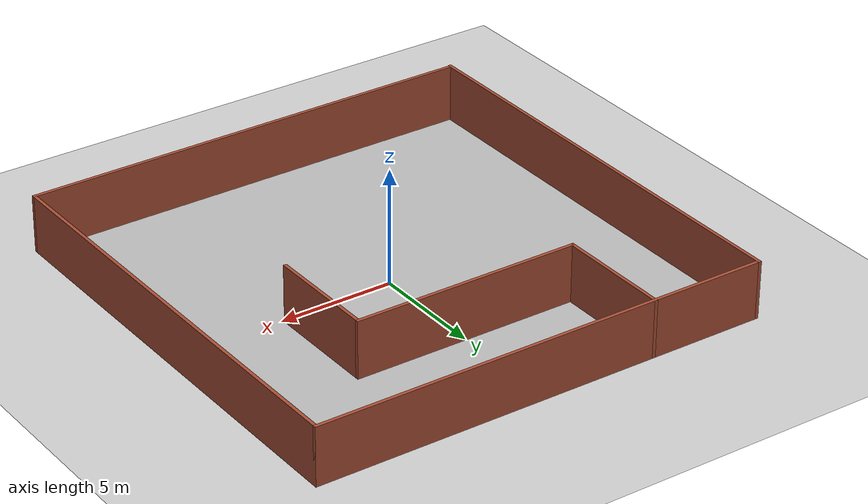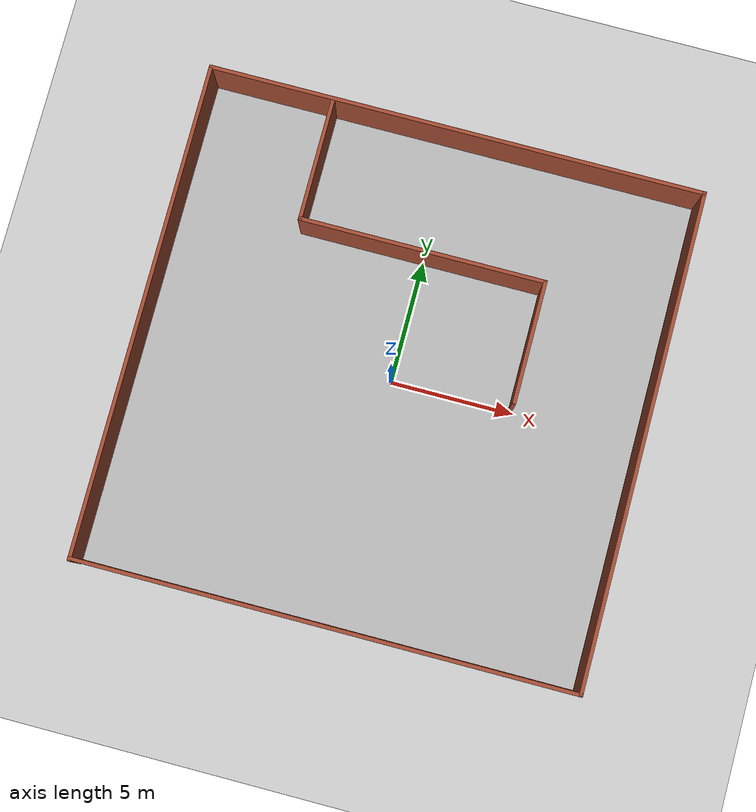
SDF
<sdf version="1.6">
 <world name="default">
  <light name="sun" type="directional">
   <pose>0 0 10 0 -0 0</pose>
   <diffuse>1 1 1 1</diffuse>
   <specular>1 1 1 1</specular>
   <attenuation>
    <range>1000</range>
    <constant>0.9</constant>
    <linear>0.01</linear>
    <quadratic>0.001</quadratic>
   </attenuation>
   <direction>-0.5 0.1 -0.9</direction>
  </light>
  <model name="ground_plane">
   <static>1</static>
   <link name="link">
    <collision name="collision">
     <geometry><plane><normal>0 0 1</normal><size>100 100</size></plane></geometry>
     <surface><friction><ode><mu>100</mu><mu2>50</mu2></ode></friction></surface>
    </collision>
    <visual name="visual">
     <cast_shadows>0</cast_shadows>
     <geometry><plane><normal>0 0 1</normal><size>100 100</size></plane></geometry>
     <material>
      <script><uri>file://media/materials/scripts/gazebo.material</uri><name>Gazebo/Grey</name></script>
     </material>
    </visual>
   </link>
  </model>
  <gravity>0 0 -9.8</gravity>
  <magnetic_field>6e-06 2.3e-05 -4.2e-05</magnetic_field>
  <atmosphere type="adiabatic"/>
  <physics name="default_physics" default="0" type="ode">
   <max_step_size>0.001</max_step_size>
   <real_time_factor>1</real_time_factor>
   <real_time_update_rate>1000</real_time_update_rate>
  </physics>
  <scene><ambient>0.4 0.4 0.4 1</ambient><background>0.7 0.7 0.7 1</background><shadows>1</shadows></scene>
  <spherical_coordinates>
   <surface_model>EARTH_WGS84</surface_model>
   <latitude_deg>0</latitude_deg>
   <longitude_deg>0</longitude_deg>
   <elevation>0</elevation>
   <heading_deg>0</heading_deg>
  </spherical_coordinates>
  <model name="Nuclear_Building1">
   <pose>0 0 0 0 0 -1.5708</pose>
   <link name="Wall_18">
    <collision name="Wall_18_Collision">
     <geometry><box><size>20.15 0.15 2.5</size></box></geometry>
     <pose>0 0 1.25 0 -0 0</pose>
    </collision>
    <visual name="Wall_18_Visual">
     <pose>0 0 1.25 0 -0 0</pose>
     <geometry><box><size>20.15 0.15 2.5</size></box></geometry>
     <material>
      <script><uri>file://media/materials/scripts/gazebo.material</uri><name>Gazebo/Bricks</name></script>
      <ambient>1 1 1 1</ambient>
     </material>
     <meta><layer>0</layer></meta>
    </visual>
    <pose>0 -10 0 0 -0 3.14159</pose>
   </link>
   <link name="Wall_20">
    <collision name="Wall_20_Collision">
     <geometry><box><size>20.15 0.15 2.5</size></box></geometry>
     <pose>0 0 1.25 0 -0 0</pose>
    </collision>
    <visual name="Wall_20_Visual">
     <pose>0 0 1.25 0 -0 0</pose>
     <geometry><box><size>20.15 0.15 2.5</size></box></geometry>
     <material>
      <script><uri>file://media/materials/scripts/gazebo.material</uri><name>Gazebo/Bricks</name></script>
      <ambient>1 1 1 1</ambient>
     </material>
     <meta><layer>0</layer></meta>
    </visual>
    <pose>-10 0 0 0 -0 1.5708</pose>
   </link>
   <link name="Wall_22">
    <collision name="Wall_22_Collision">
     <geometry><box><size>20.15 0.15 2.5</size></box></geometry>
     <pose>0 0 1.25 0 -0 0</pose>
    </collision>
    <visual name="Wall_22_Visual">
     <pose>0 0 1.25 0 -0 0</pose>
     <geometry><box><size>20.15 0.15 2.5</size></box></geometry>
     <material>
      <script><uri>file://media/materials/scripts/gazebo.material</uri><name>Gazebo/Bricks</name></script>
      <ambient>1 1 1 1</ambient>
     </material>
     <meta><layer>0</layer></meta>
    </visual>
    <pose>9.95932 0 0 0 0 -1.5708</pose>
   </link>
   <link name="Wall_25">
    <collision name="Wall_25_Collision">
     <geometry><box><size>20.0686 0.15 2.5</size></box></geometry>
     <pose>0 0 1.25 0 -0 0</pose>
    </collision>
    <visual name="Wall_25_Visual">
     <pose>0 0 1.25 0 -0 0</pose>
     <geometry><box><size>20.0686 0.15 2.5</size></box></geometry>
     <material>
      <script><uri>file://media/materials/scripts/gazebo.material</uri><name>Gazebo/Bricks</name></script>
      <ambient>1 1 1 1</ambient>
     </material>
     <meta><layer>0</layer></meta>
    </visual>
    <pose>-0.040685 10 0 0 -0 0</pose>
   </link>
   <link name="Wall_27">
    <collision name="Wall_27_Collision">
     <geometry><box><size>5.15 0.15 2.5</size></box></geometry>
     <pose>0 0 1.25 0 -0 0</pose>
    </collision>
    <visual name="Wall_27_Visual">
     <pose>0 0 1.25 0 -0 0</pose>
     <geometry><box><size>5.15 0.15 2.5</size></box></geometry>
     <material>
      <script><uri>file://media/materials/scripts/gazebo.material</uri><name>Gazebo/Bricks</name></script>
      <ambient>1 1 1 1</ambient>
     </material>
     <meta><layer>0</layer></meta>
    </visual>
    <pose>-7.5 -5 0 0 -0 3.14159</pose>
   </link>
   <link name="Wall_29">
    <collision name="Wall_29_Collision">
     <geometry><box><size>10 0.15 2.5</size></box></geometry>
     <pose>0 0 1.25 0 -0 0</pose>
    </collision>
    <visual name="Wall_29_Visual">
     <pose>0 0 1.25 0 -0 0</pose>
     <geometry><box><size>10 0.15 2.5</size></box></geometry>
     <material>
      <script><uri>file://media/materials/scripts/gazebo.material</uri><name>Gazebo/Bricks</name></script>
      <ambient>1 1 1 1</ambient>
     </material>
     <meta><layer>0</layer></meta>
    </visual>
    <pose>-5 -0.075 0 0 -0 1.5708</pose>
   </link>
   <link name="Wall_31">
    <collision name="Wall_31_Collision">
     <geometry><box><size>5 0.15 2.5</size></box></geometry>
     <pose>0 0 1.25 0 -0 0</pose>
    </collision>
    <visual name="Wall_31_Visual">
     <pose>0 0 1.25 0 -0 0</pose>
     <geometry><box><size>5 0.15 2.5</size></box></geometry>
     <material>
      <script><uri>file://media/materials/scripts/gazebo.material</uri><name>Gazebo/Bricks</name></script>
      <ambient>1 1 1 1</ambient>
     </material>
     <meta><layer>0</layer></meta>
    </visual>
    <pose>-2.575 4.85 0 0 -0 0</pose>
   </link>
   <static>1</static>
  </model>
  <model name="my_ground_plane">
   <static>1</static>
   <link name="link">
    <collision name="collision">
     <geometry><plane><normal>0 0 1</normal><size>20 20</size></plane></geometry>
     <surface><friction><ode><mu>100</mu><mu2>50</mu2></ode></friction></surface>
    </collision>
    <visual name="visual">
     <cast_shadows>0</cast_shadows>
     <geometry><plane><normal>0 0 1</normal><size>20 20</size></plane></geometry>
     <material>
      <script>
       <uri>model://my_ground_plane/materials/scripts</uri>
       <uri>model://my_ground_plane/materials/textures/</uri>
       <name>MyGroundPlane/Image</name>
      </script>
     </material>
    </visual>
   </link>
  </model>
 </world>
</sdf>
